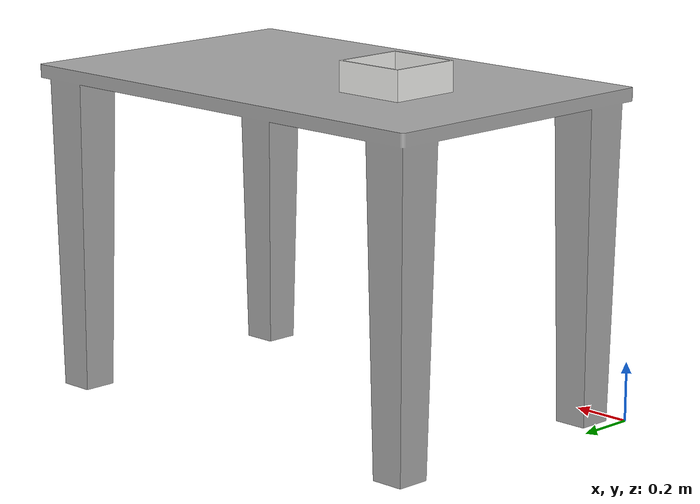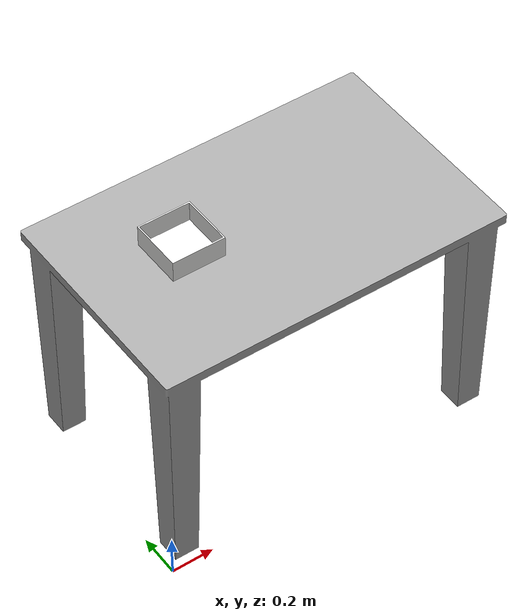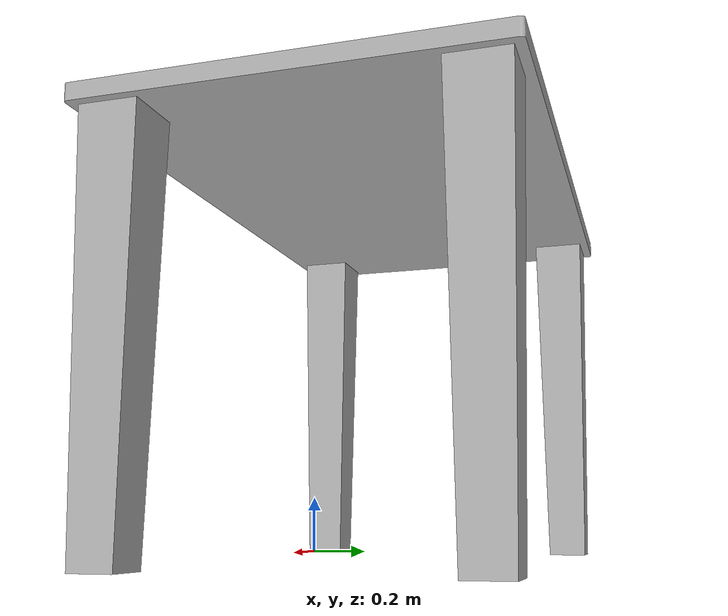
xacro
<?xml version="1.0" ?>
<robot name="table" xmlns:xacro="http://www.ros.org/wiki/xacro">

<xacro:include filename="$(find cv_ur5_project)/urdf/materials.xacro" />
<xacro:property name="body_color1" value="0.675 0.675 0.675" />
<xacro:property name="body_color2" value="0.961 0.961 0.953" />

<link name="world"/>

<joint name = "joint_fix" type = "fixed">
  <parent link="world"/>
  <child link = "table_link"/>
</joint>

<!-- Define base_link as the root link -->
<link name="table_link">
  <inertial>
    <origin xyz="0.8381999999999986 -0.22674260990281273 -0.5333999999999964" rpy="0 0 0"/>
    <mass value="422.15116184814156"/>
    <inertia ixx="105.743581" iyy="222.544559" izz="209.556172" ixy="-0.0" iyz="-0.0" ixz="-0.0"/>
  </inertial>
  <visual>
    <origin xyz="0 0 1.0668 " rpy="1.5708 0 0"/>
    <geometry>
      <mesh filename="package://cv_ur5_project/meshes/table_link.stl" scale="0.001 0.001 0.001"/>
    </geometry>
    <material name="gray"/>
  </visual>
  <collision>
    <origin xyz="0 0 1.0668 " rpy="1.5708 0 0"/>
    <geometry>
      <mesh filename="package://cv_ur5_project/meshes/table_link.stl" scale="0.001 0.001 0.001"/>
    </geometry>
  </collision>
</link>

<!-- Joint connecting base_link to WhiteBox_1 -->
<joint name="whitebox_joint" type="fixed">
  <origin xyz="0 0 1.0668" rpy="0 0 0"/>
  <parent link="table_link"/>
  <child link="WhiteBox"/>
</joint>

<!-- Define WhiteBox_1 link -->
<link name="WhiteBox">
  <inertial>
    <origin xyz="-1.3167221923904293e-08 0.03334555837563434 9.325099425971928e-08" rpy="0 0 0"/>
    <mass value="1.0693583451499975"/>
    <inertia ixx="0.009978" iyy="0.017662" izz="0.009978" ixy="0.0" iyz="0.0" ixz="-0.0"/>
  </inertial>
  <visual>
    <origin xyz="0.0 0.0 0.0 " rpy="1.5708 0 0"/>
    <geometry>
      <mesh filename="package://cv_ur5_project/meshes/WhiteBox.stl" scale="0.001 0.001 0.001"/>
    </geometry>
    <material name="off_white"/>
  </visual>
  <collision>
    <origin xyz="0.0 0.0 0.0 " rpy="1.5708 0 0"/>
    <geometry>
      <mesh filename="package://cv_ur5_project/meshes/WhiteBox.stl" scale="0.001 0.001 0.001"/>
    </geometry>
  </collision>
</link>

<gazebo reference="table_link">
  <mu1>10</mu1>
  <mu2>10</mu2>
  <material>${body_color1}</material>
</gazebo>

<gazebo reference="WhiteBox">
  <mu1>10</mu1>
  <mu2>10</mu2>
  <material>${body_color2}</material>
</gazebo>

</robot>

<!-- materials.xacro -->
<robot name="Setup" xmlns:xacro="http://www.ros.org/wiki/xacro" >

<material name="gray">
  <color rgba="0.675 0.675 0.675 1.000"/>
</material>

<material name="off_white">
  <color rgba="0.961 0.961 0.953 1.000"/>
</material>

<material name="green">
  <color rgba="0.537 0.878 0.651 1.000"/>
</material>

<material name="blue">
  <color rgba="0.419 0.796 0.898 1.000"/>
</material>

</robot>
